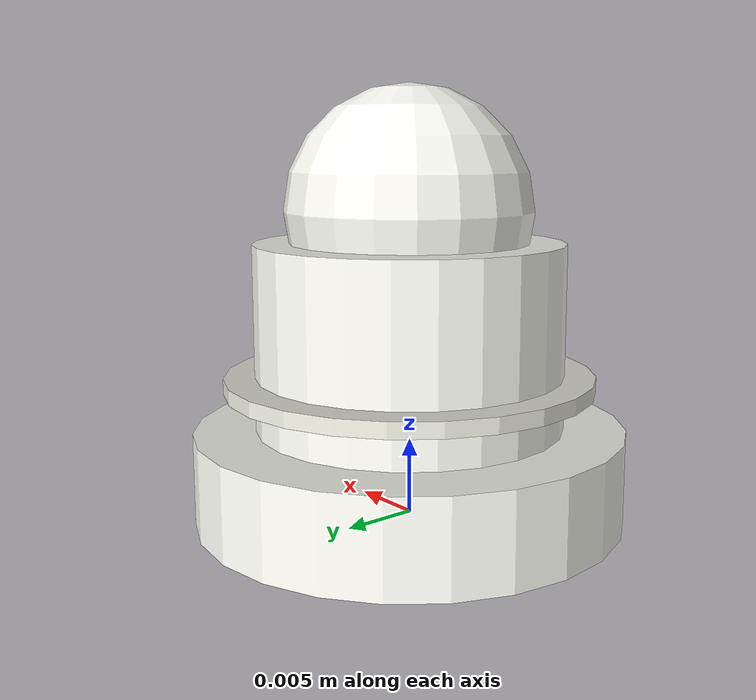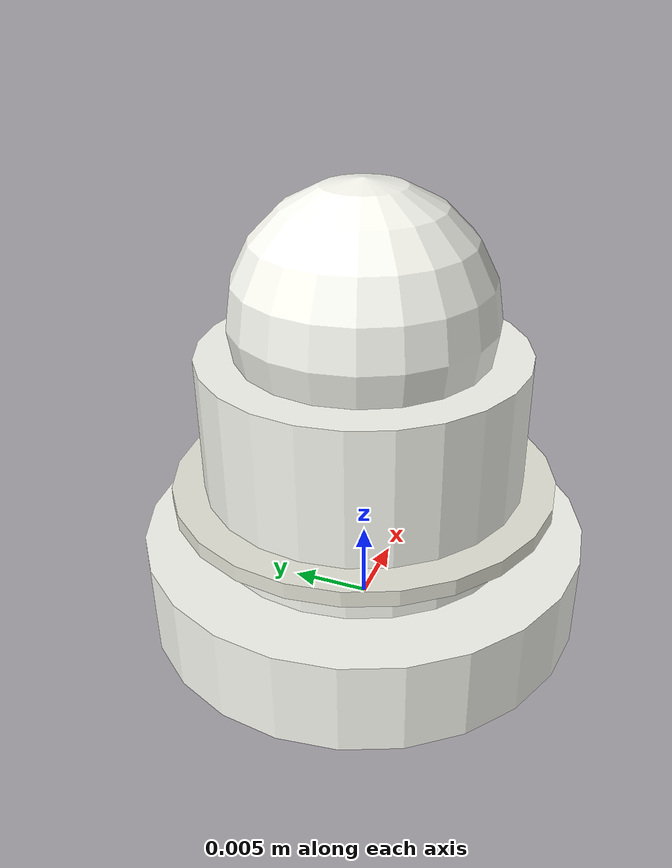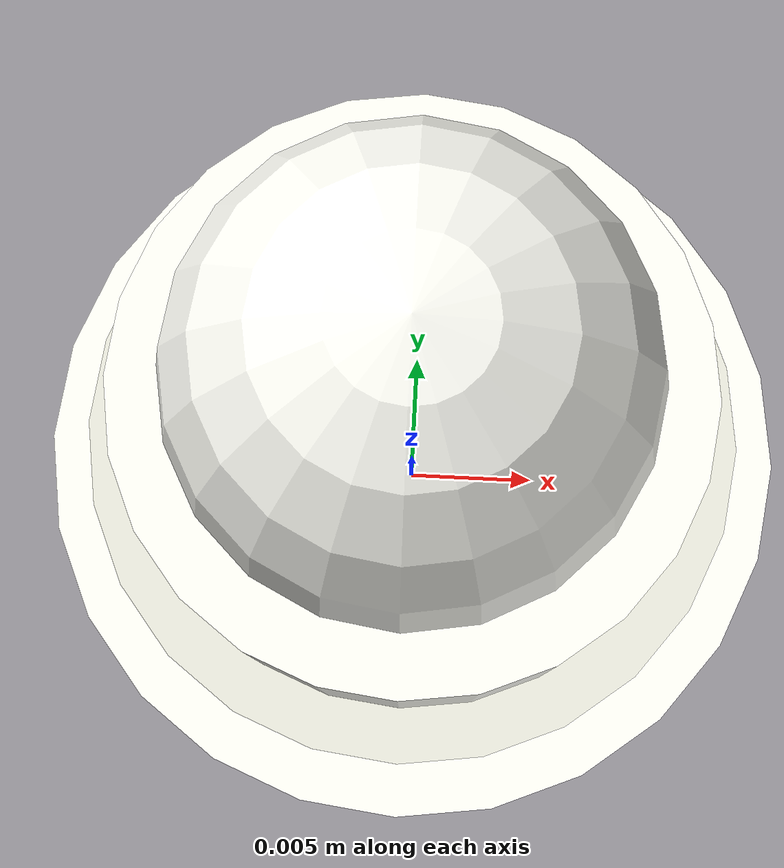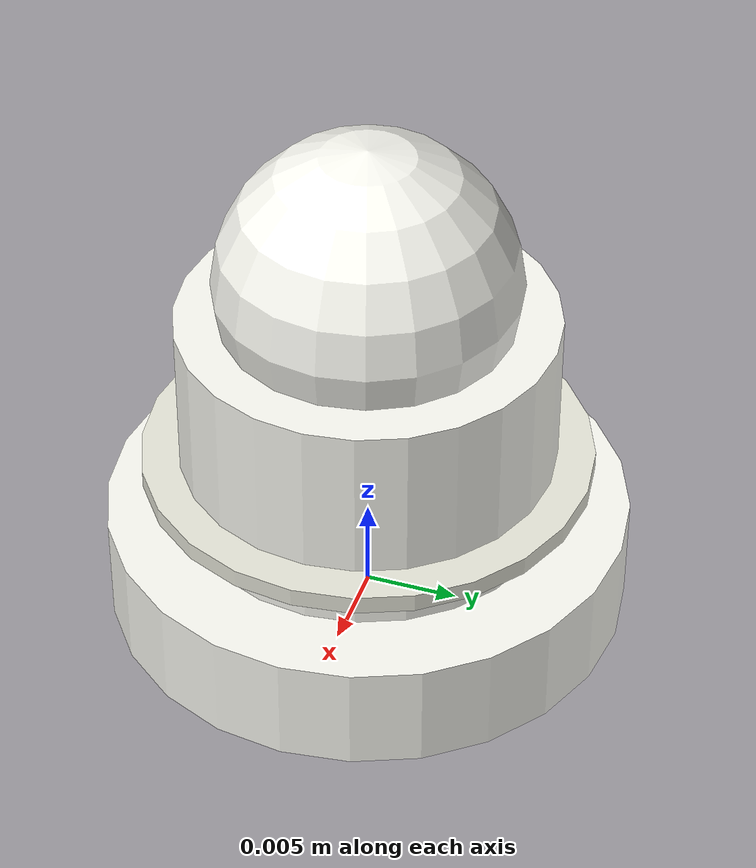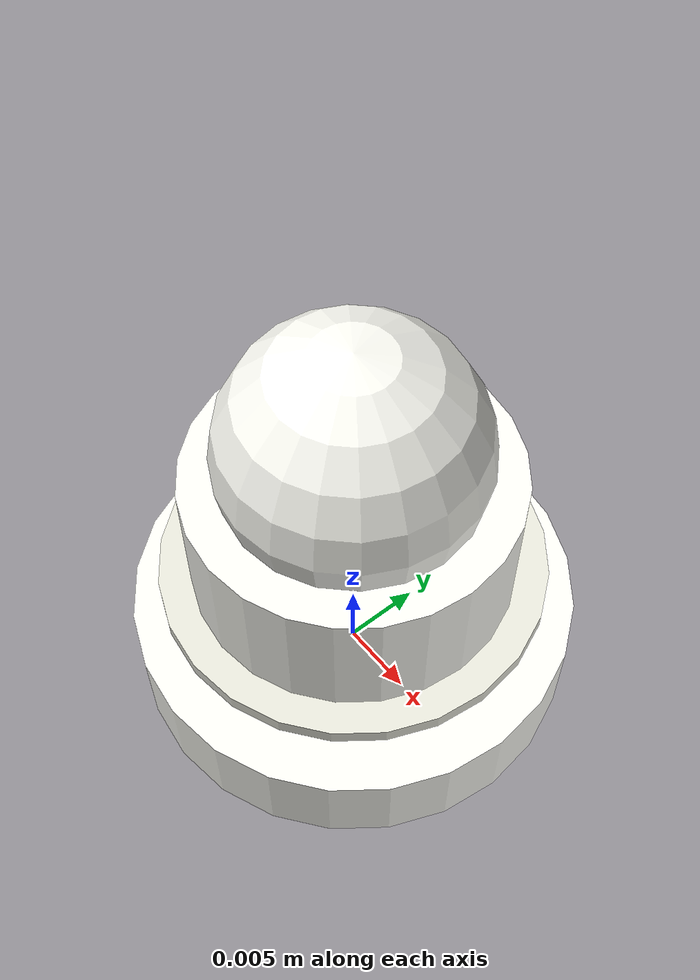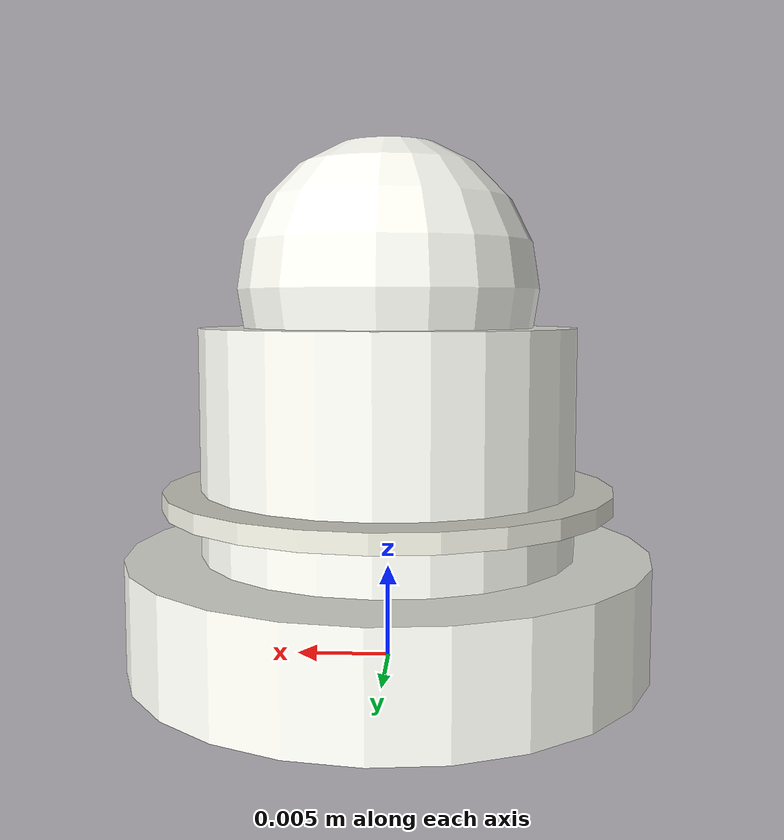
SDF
<?xml version="1.0" ?>
<sdf version="1.6">
  <model name="chess_pawn_white">
    <link name="link">
      <pose>0 0 0 0 0 0</pose>

      <inertial>
        <mass>0.05</mass>
        <pose>0 0 0.012 0 0 0</pose>
        <inertia>
          <ixx>0.00001</ixx>
          <ixy>0</ixy>
          <ixz>0</ixz>
          <iyy>0.00001</iyy>
          <iyz>0</iyz>
          <izz>0.00001</izz>
        </inertia>
      </inertial>

      <!-- Base platform -->
      <collision name="base_collision">
        <pose>0 0 0.003 0 0 0</pose>
        <geometry>
          <cylinder>
            <radius>0.014</radius>
            <length>0.006</length>
          </cylinder>
        </geometry>
        <surface>
          <friction>
            <ode>
              <mu>0.8</mu>
              <mu2>0.8</mu2>
            </ode>
          </friction>
          <bounce>
            <restitution_coefficient>0.1</restitution_coefficient>
          </bounce>
        </surface>
      </collision>

      <!-- Main body (narrower waist) -->
      <collision name="body_collision">
        <pose>0 0 0.012 0 0 0</pose>
        <geometry>
          <cylinder>
            <radius>0.010</radius>
            <length>0.012</length>
          </cylinder>
        </geometry>
      </collision>

      <!-- Rounded head -->
      <collision name="head_collision">
        <pose>0 0 0.020 0 0 0</pose>
        <geometry>
          <sphere>
            <radius>0.008</radius>
          </sphere>
        </geometry>
      </collision>

      <!-- Visuals for detailed appearance -->
      <visual name="base_visual">
        <pose>0 0 0.003 0 0 0</pose>
        <geometry>
          <cylinder>
            <radius>0.014</radius>
            <length>0.006</length>
          </cylinder>
        </geometry>
        <material>
          <ambient>0.95 0.95 0.9 1</ambient>
          <diffuse>0.98 0.98 0.95 1</diffuse>
          <specular>0.4 0.4 0.4 1</specular>
        </material>
      </visual>

      <visual name="body_visual">
        <pose>0 0 0.012 0 0 0</pose>
        <geometry>
          <cylinder>
            <radius>0.010</radius>
            <length>0.012</length>
          </cylinder>
        </geometry>
        <material>
          <ambient>0.95 0.95 0.9 1</ambient>
          <diffuse>0.98 0.98 0.95 1</diffuse>
          <specular>0.4 0.4 0.4 1</specular>
        </material>
      </visual>

      <visual name="head_visual">
        <pose>0 0 0.020 0 0 0</pose>
        <geometry>
          <sphere>
            <radius>0.008</radius>
          </sphere>
        </geometry>
        <material>
          <ambient>0.95 0.95 0.9 1</ambient>
          <diffuse>0.98 0.98 0.95 1</diffuse>
          <specular>0.5 0.5 0.5 1</specular>
        </material>
      </visual>

      <!-- Decorative ring for visual distinction -->
      <visual name="ring_visual">
        <pose>0 0 0.009 0 0 0</pose>
        <geometry>
          <cylinder>
            <radius>0.012</radius>
            <length>0.001</length>
          </cylinder>
        </geometry>
        <material>
          <ambient>0.85 0.85 0.8 1</ambient>
          <diffuse>0.9 0.9 0.85 1</diffuse>
          <specular>0.3 0.3 0.3 1</specular>
        </material>
      </visual>
    </link>
  </model>
</sdf>
